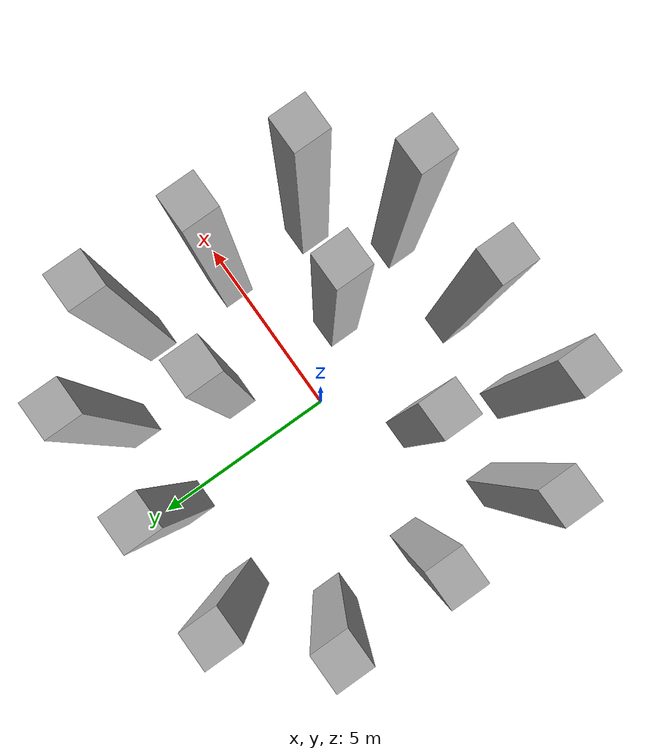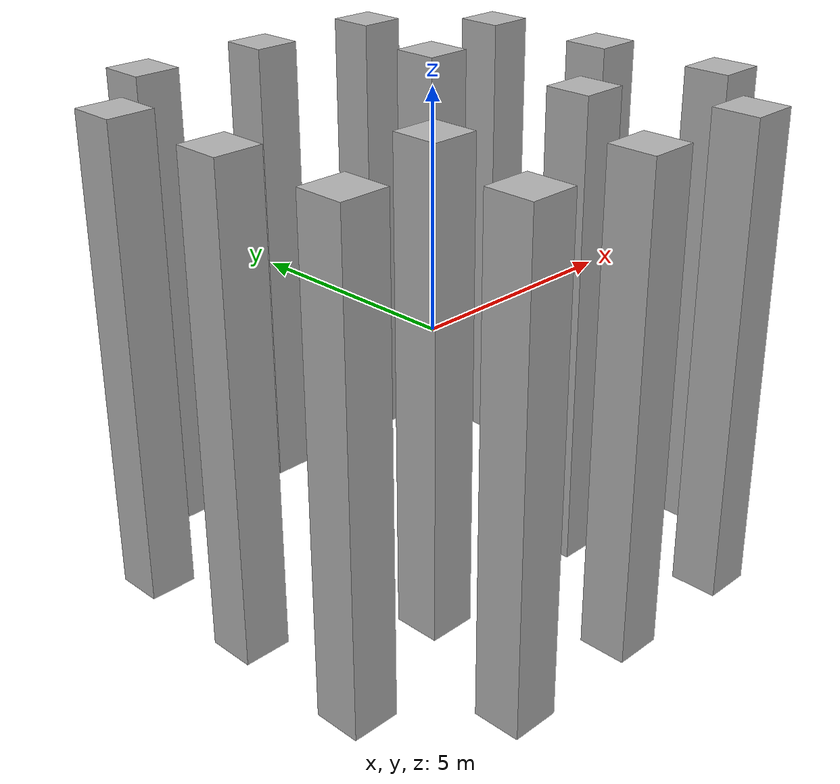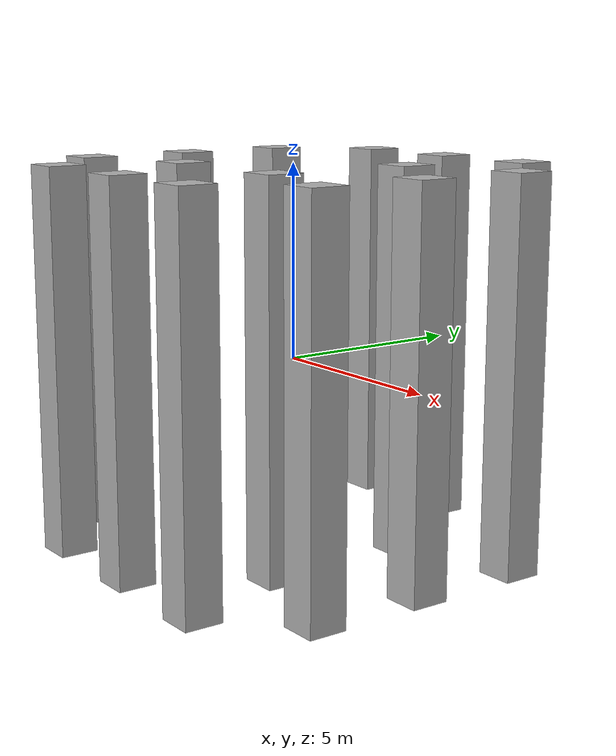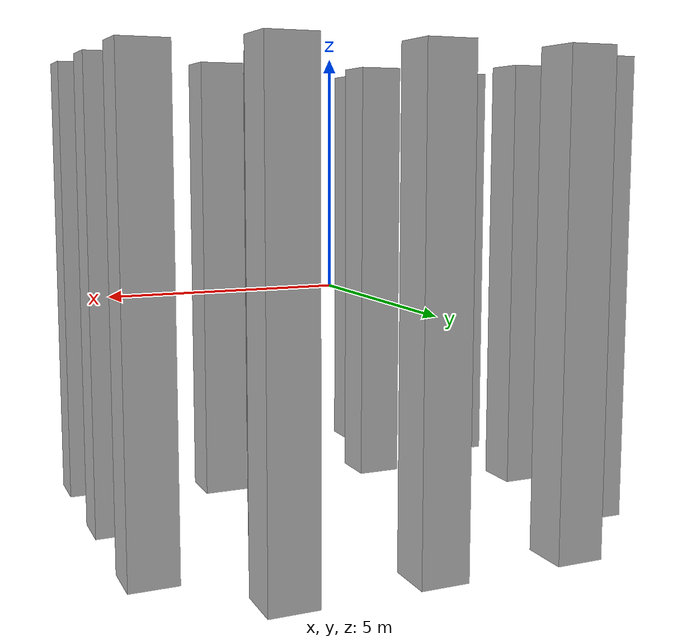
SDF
<?xml version="1.0" ?>
<!-- Luis Blunschi pillar field, square posts -->
<sdf version="1.6">
  <model name="pillar_field">
    <static>true</static>

    <link name="pillars">

      <!-- Shared geometry:
           box 1 x 1 x 10 (z from -5 to +5), centered at z = 0 -->

      <!-- Pillar at (5, 3) -->
      <collision name="pillar_5_3_collision">
        <pose>5 3 0 0 0 0</pose>
        <geometry>
          <box>
            <size>1 1 10</size>
          </box>
        </geometry>
      </collision>
      <visual name="pillar_5_3_visual">
        <pose>5 3 0 0 0 0</pose>
        <geometry>
          <box>
            <size>1 1 10</size>
          </box>
        </geometry>
        <material>
          <ambient>0.7 0.7 0.7 1</ambient>
          <diffuse>0.7 0.7 0.7 1</diffuse>
        </material>
      </visual>

      <!-- Pillar at (5, 0) -->
      <collision name="pillar_5_0_collision">
        <pose>5 0 0 0 0 0</pose>
        <geometry>
          <box>
            <size>1 1 10</size>
          </box>
        </geometry>
      </collision>
      <visual name="pillar_5_0_visual">
        <pose>5 0 0 0 0 0</pose>
        <geometry>
          <box>
            <size>1 1 10</size>
          </box>
        </geometry>
        <material>
          <ambient>0.7 0.7 0.7 1</ambient>
          <diffuse>0.7 0.7 0.7 1</diffuse>
        </material>
      </visual>

      <!-- Pillar at (5, -3) -->
      <collision name="pillar_5_-3_collision">
        <pose>5 -3 0 0 0 0</pose>
        <geometry>
          <box>
            <size>1 1 10</size>
          </box>
        </geometry>
      </collision>
      <visual name="pillar_5_-3_visual">
        <pose>5 -3 0 0 0 0</pose>
        <geometry>
          <box>
            <size>1 1 10</size>
          </box>
        </geometry>
        <material>
          <ambient>0.7 0.7 0.7 1</ambient>
          <diffuse>0.7 0.7 0.7 1</diffuse>
        </material>
      </visual>

      <!-- Pillar at (0, 5) -->
      <collision name="pillar_0_5_collision">
        <pose>0 5 0 0 0 0</pose>
        <geometry>
          <box>
            <size>1 1 10</size>
          </box>
        </geometry>
      </collision>
      <visual name="pillar_0_5_visual">
        <pose>0 5 0 0 0 0</pose>
        <geometry>
          <box>
            <size>1 1 10</size>
          </box>
        </geometry>
        <material>
          <ambient>0.7 0.7 0.7 1</ambient>
          <diffuse>0.7 0.7 0.7 1</diffuse>
        </material>
      </visual>

      <!-- Pillar at (0, -5) -->
      <collision name="pillar_0_-5_collision">
        <pose>0 -5 0 0 0 0</pose>
        <geometry>
          <box>
            <size>1 1 10</size>
          </box>
        </geometry>
      </collision>
      <visual name="pillar_0_-5_visual">
        <pose>0 -5 0 0 0 0</pose>
        <geometry>
          <box>
            <size>1 1 10</size>
          </box>
        </geometry>
        <material>
          <ambient>0.7 0.7 0.7 1</ambient>
          <diffuse>0.7 0.7 0.7 1</diffuse>
        </material>
      </visual>

      <!-- Pillar at (-5, 3) -->
      <collision name="pillar_-5_3_collision">
        <pose>-5 3 0 0 0 0</pose>
        <geometry>
          <box>
            <size>1 1 10</size>
          </box>
        </geometry>
      </collision>
      <visual name="pillar_-5_3_visual">
        <pose>-5 3 0 0 0 0</pose>
        <geometry>
          <box>
            <size>1 1 10</size>
          </box>
        </geometry>
        <material>
          <ambient>0.7 0.7 0.7 1</ambient>
          <diffuse>0.7 0.7 0.7 1</diffuse>
        </material>
      </visual>

      <!-- Pillar at (-5, 0) -->
      <collision name="pillar_-5_0_collision">
        <pose>-5 0 0 0 0 0</pose>
        <geometry>
          <box>
            <size>1 1 10</size>
          </box>
        </geometry>
      </collision>
      <visual name="pillar_-5_0_visual">
        <pose>-5 0 0 0 0 0</pose>
        <geometry>
          <box>
            <size>1 1 10</size>
          </box>
        </geometry>
        <material>
          <ambient>0.7 0.7 0.7 1</ambient>
          <diffuse>0.7 0.7 0.7 1</diffuse>
        </material>
      </visual>

      <!-- Pillar at (-5, -3) -->
      <collision name="pillar_-5_-3_collision">
        <pose>-5 -3 0 0 0 0</pose>
        <geometry>
          <box>
            <size>1 1 10</size>
          </box>
        </geometry>
      </collision>
      <visual name="pillar_-5_-3_visual">
        <pose>-5 -3 0 0 0 0</pose>
        <geometry>
          <box>
            <size>1 1 10</size>
          </box>
        </geometry>
        <material>
          <ambient>0.7 0.7 0.7 1</ambient>
          <diffuse>0.7 0.7 0.7 1</diffuse>
        </material>
      </visual>

      <!-- Pillar at (3, 5) -->
      <collision name="pillar_3_5_collision">
        <pose>3 5 0 0 0 0</pose>
        <geometry>
          <box>
            <size>1 1 10</size>
          </box>
        </geometry>
      </collision>
      <visual name="pillar_3_5_visual">
        <pose>3 5 0 0 0 0</pose>
        <geometry>
          <box>
            <size>1 1 10</size>
          </box>
        </geometry>
        <material>
          <ambient>0.7 0.7 0.7 1</ambient>
          <diffuse>0.7 0.7 0.7 1</diffuse>
        </material>
      </visual>

      <!-- Pillar at (-3, -5) -->
      <collision name="pillar_-3_-5_collision">
        <pose>-3 -5 0 0 0 0</pose>
        <geometry>
          <box>
            <size>1 1 10</size>
          </box>
        </geometry>
      </collision>
      <visual name="pillar_-3_-5_visual">
        <pose>-3 -5 0 0 0 0</pose>
        <geometry>
          <box>
            <size>1 1 10</size>
          </box>
        </geometry>
        <material>
          <ambient>0.7 0.7 0.7 1</ambient>
          <diffuse>0.7 0.7 0.7 1</diffuse>
        </material>
      </visual>

      <!-- Pillar at (-3, 5) -->
      <collision name="pillar_-3_5_collision">
        <pose>-3 5 0 0 0 0</pose>
        <geometry>
          <box>
            <size>1 1 10</size>
          </box>
        </geometry>
      </collision>
      <visual name="pillar_-3_5_visual">
        <pose>-3 5 0 0 0 0</pose>
        <geometry>
          <box>
            <size>1 1 10</size>
          </box>
        </geometry>
        <material>
          <ambient>0.7 0.7 0.7 1</ambient>
          <diffuse>0.7 0.7 0.7 1</diffuse>
        </material>
      </visual>

      <!-- Pillar at (3, -5) -->
      <collision name="pillar_3_-5_collision">
        <pose>3 -5 0 0 0 0</pose>
        <geometry>
          <box>
            <size>1 1 10</size>
          </box>
        </geometry>
      </collision>
      <visual name="pillar_3_-5_visual">
        <pose>3 -5 0 0 0 0</pose>
        <geometry>
          <box>
            <size>1 1 10</size>
          </box>
        </geometry>
        <material>
          <ambient>0.7 0.7 0.7 1</ambient>
          <diffuse>0.7 0.7 0.7 1</diffuse>
        </material>
      </visual>

      <!-- Pillar at (-2, 2) -->
      <collision name="pillar_2_2_collision">
        <pose>2 2 0 0 0 0</pose>
        <geometry>
          <box>
            <size>1 1 10</size>
          </box>
        </geometry>
      </collision>
      <visual name="pillar_-2_2_visual">
        <pose>2 2 0 0 0 0</pose>
        <geometry>
          <box>
            <size>1 1 10</size>
          </box>
        </geometry>
        <material>
          <ambient>0.7 0.7 0.7 1</ambient>
          <diffuse>0.7 0.7 0.7 1</diffuse>
        </material>
      </visual>

      <!-- Pillar at (-2, 2) -->
      <collision name="pillar_2_-2_collision">
        <pose>2 -2 0 0 0 0</pose>
        <geometry>
          <box>
            <size>1 1 10</size>
          </box>
        </geometry>
      </collision>
      <visual name="pillar_2_-2_visual">
        <pose>2 -2 0 0 0 0</pose>
        <geometry>
          <box>
            <size>1 1 10</size>
          </box>
        </geometry>
        <material>
          <ambient>0.7 0.7 0.7 1</ambient>
          <diffuse>0.7 0.7 0.7 1</diffuse>
        </material>
      </visual>

      <!-- Pillar at (-2, -2) -->
      <collision name="pillar_-2_-2_collision">
        <pose>-2 -2 0 0 0 0</pose>
        <geometry>
          <box>
            <size>1 1 10</size>
          </box>
        </geometry>
      </collision>
      <visual name="pillar_-2_-2_visual">
        <pose>-2 -2 0 0 0 0</pose>
        <geometry>
          <box>
            <size>1 1 10</size>
          </box>
        </geometry>
        <material>
          <ambient>0.7 0.7 0.7 1</ambient>
          <diffuse>0.7 0.7 0.7 1</diffuse>
        </material>
      </visual>

    </link>
  </model>
</sdf>
